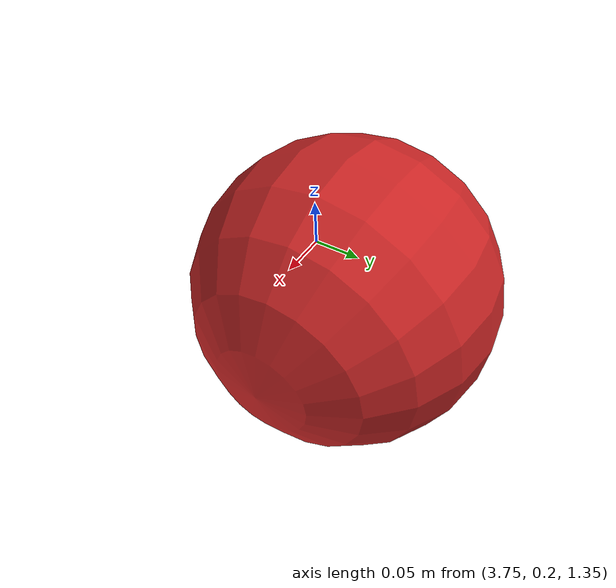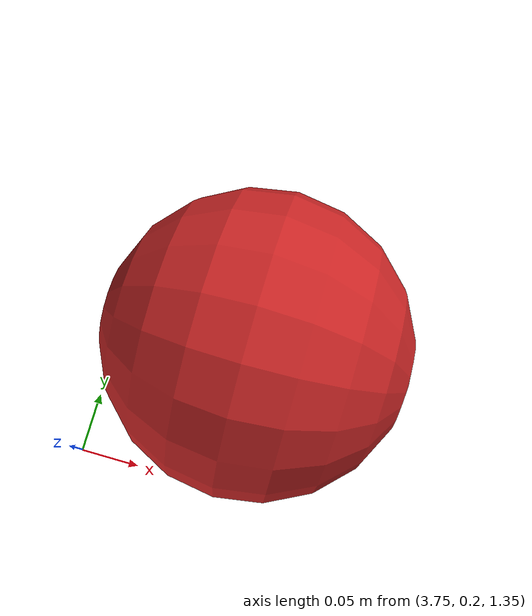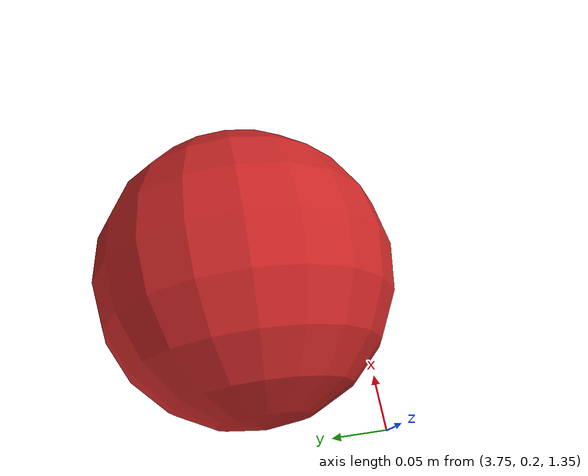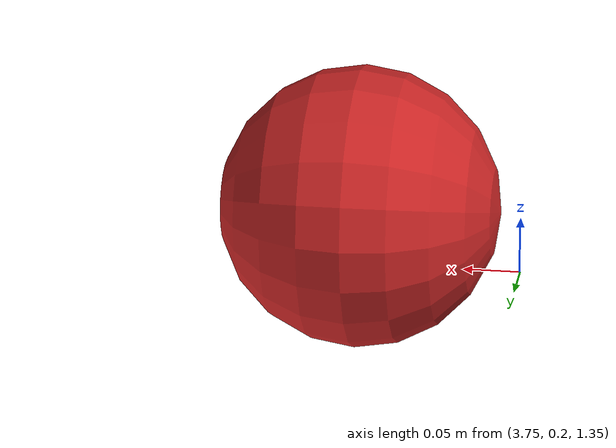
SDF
<sdf version="1.6">
 <world name="default">
  <light name="sun" type="directional">
   <pose>0 0 10 0 -0 0</pose>
   <diffuse>0.8 0.8 0.8 1</diffuse>
   <specular>0.1 0.1 0.1 1</specular>
   <attenuation>
    <range>1000</range>
    <constant>0.9</constant>
    <linear>0.01</linear>
    <quadratic>0.001</quadratic>
   </attenuation>
   <direction>-0.5 0.5 -1</direction>
  </light>
  <model name="ground_plane">
   <static>1</static>
   <link name="link">
    <collision name="collision">
     <geometry><plane><normal>0 0 1</normal><size>100 100</size></plane></geometry>
     <surface><friction><ode><mu>100</mu><mu2>50</mu2></ode></friction></surface>
    </collision>
    <visual name="visual">
     <cast_shadows>0</cast_shadows>
     <geometry><plane><normal>0 0 1</normal><size>100 100</size></plane></geometry>
     <material>
      <script><uri>file://media/materials/scripts/gazebo.material</uri><name>Gazebo/Grey</name></script>
     </material>
    </visual>
   </link>
  </model>
  <gravity>0 0 -9.8</gravity>
  <magnetic_field>6e-06 2.3e-05 -4.2e-05</magnetic_field>
  <atmosphere type="adiabatic"/>
  <physics name="default_physics" default="0" type="ode">
   <max_step_size>0.001</max_step_size>
   <real_time_factor>1</real_time_factor>
   <real_time_update_rate>1000</real_time_update_rate>
  </physics>
  <scene><ambient>0.4 0.4 0.4 1</ambient><background>0.7 0.7 0.7 1</background><shadows>1</shadows></scene>
  <spherical_coordinates>
   <surface_model>EARTH_WGS84</surface_model>
   <latitude_deg>0</latitude_deg>
   <longitude_deg>0</longitude_deg>
   <elevation>0</elevation>
   <heading_deg>0</heading_deg>
  </spherical_coordinates>
  <model name="ball_red_0">
   <link name="link">
    <pose>0 0 0 1.57 -0 1.57</pose>
    <visual name="visual">
     <pose>-0.15 0 -0.05 0 -0 0</pose>
     <geometry><sphere><radius>0.118835</radius></sphere></geometry>
     <material>
      <script><uri>file://media/materials/scripts/gazebo.material</uri><name>Gazebo/Red</name></script>
      <ambient>1 0 0 1</ambient>
      <diffuse>1 0 0 1</diffuse>
      <specular>0.1 0.1 0.1 1</specular>
      <emissive>0 0 0 1</emissive>
     </material>
    </visual>
   </link>
   <static>1</static>
   <pose>3.92438 0.461974 1.44398 0 -0 0</pose>
  </model>
 </world>
</sdf>
